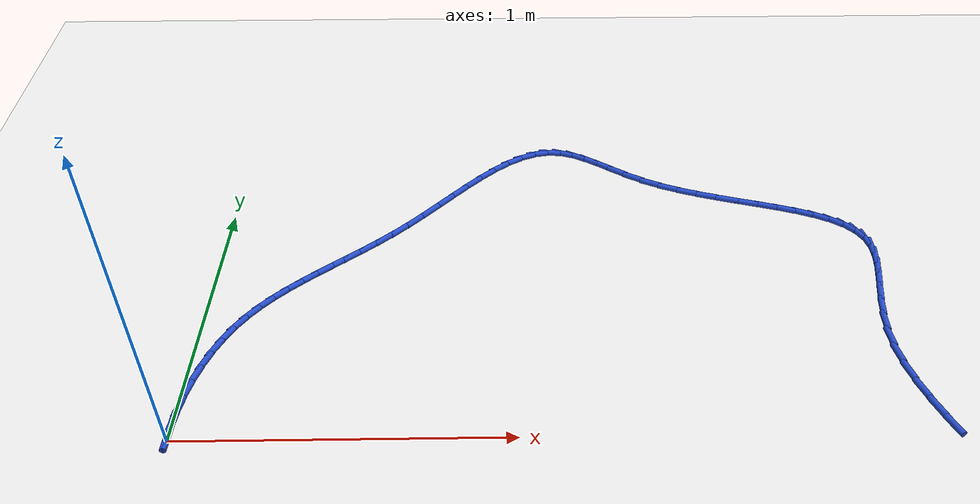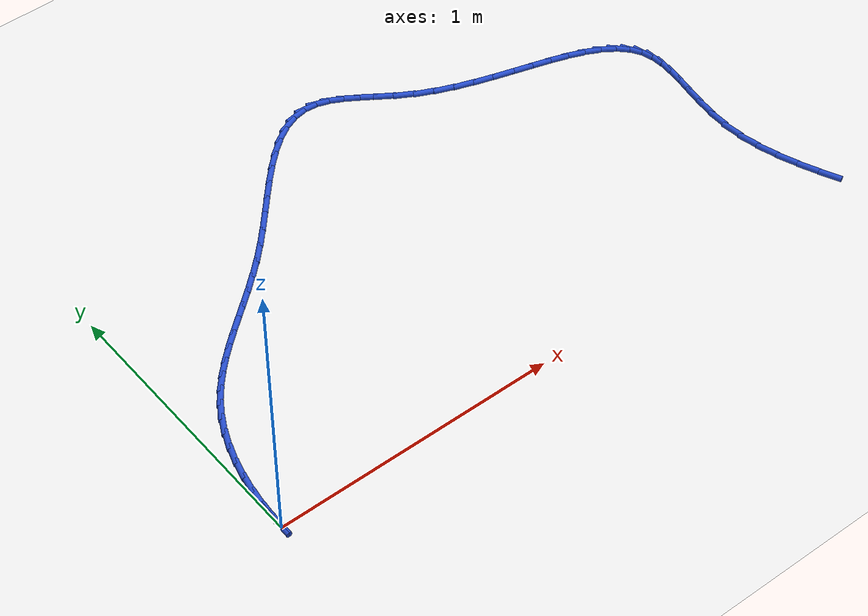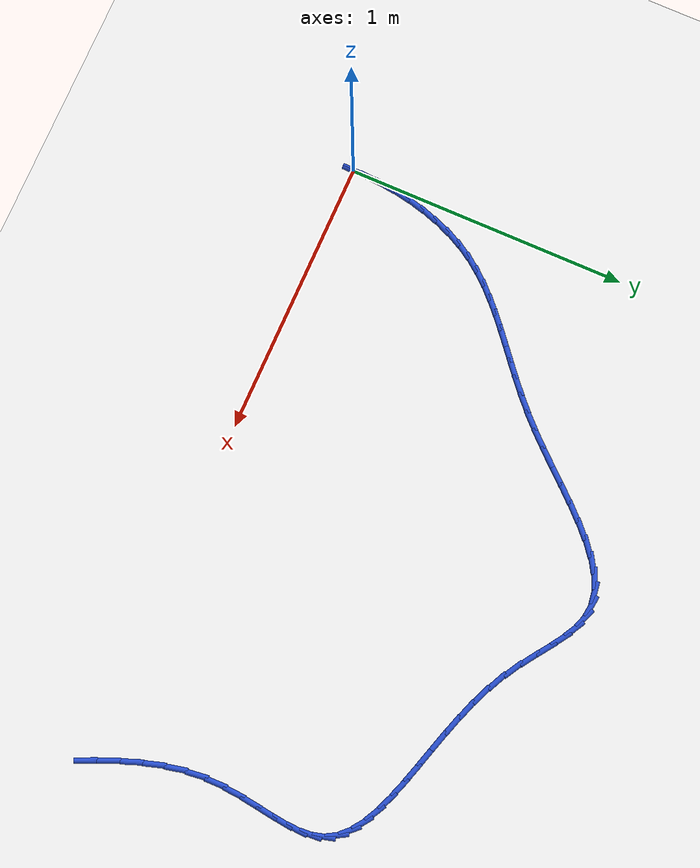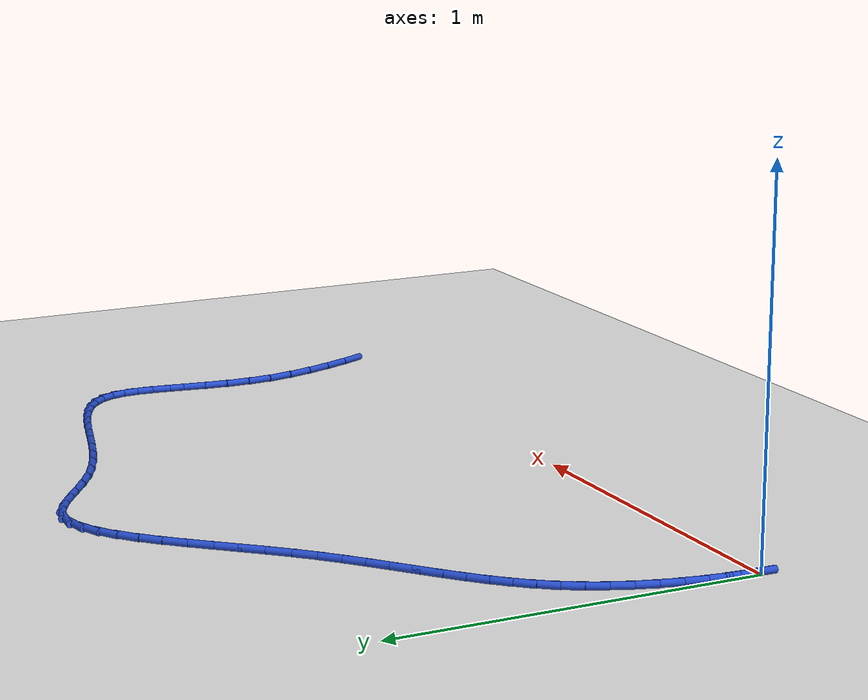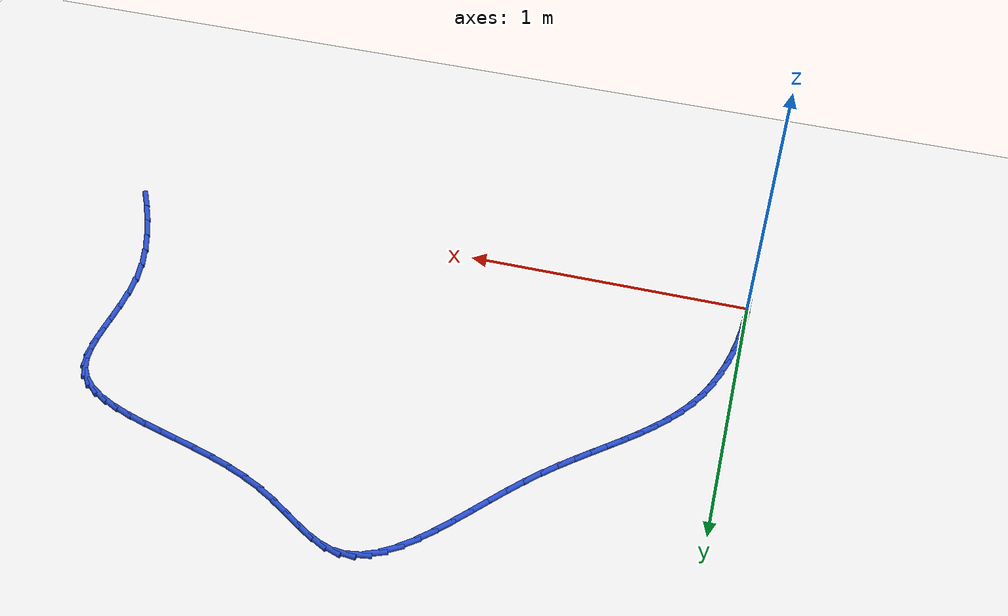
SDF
<sdf version="1.6">
 <world name="default">
  <model name="ground_plane">
   <static>1</static>
   <link name="link">
    <collision name="collision">
     <geometry><plane><normal>0 0 1</normal><size>100 100</size></plane></geometry>
     <surface><friction><ode><mu>100</mu><mu2>50</mu2></ode></friction></surface>
    </collision>
    <visual name="visual">
     <cast_shadows>0</cast_shadows>
     <geometry><plane><normal>0 0 1</normal><size>100 100</size></plane></geometry>
     <material>
      <script><uri>file://media/materials/scripts/gazebo.material</uri><name>Gazebo/WhiteGlow</name></script>
     </material>
    </visual>
   </link>
  </model>
  <model name="line">
   <link name="link_0">
    <pose>-3.469446951953614e-18 1.5265566588595902e-16 0.01 0 1.57 1.5455777123674146</pose>
    <collision name="collision">
     <geometry><cylinder><radius>0.01</radius><length>0.08</length></cylinder></geometry>
    </collision>
    <visual name="visual">
     <material>
      <script><name>Gazebo/Blue</name><uri>file://media/materials/scripts/gazebo.material</uri></script>
     </material>
     <geometry><cylinder><radius>0.01</radius><length>0.08</length></cylinder></geometry>
    </visual>
   </link>
   <link name="link_1">
    <pose>0.0015492278948256656 0.06141889595624291 0.01 0 1.57 1.489265548241584</pose>
    <collision name="collision">
     <geometry><cylinder><radius>0.01</radius><length>0.08</length></cylinder></geometry>
    </collision>
    <visual name="visual">
     <material>
      <script><name>Gazebo/Blue</name><uri>file://media/materials/scripts/gazebo.material</uri></script>
     </material>
     <geometry><cylinder><radius>0.01</radius><length>0.08</length></cylinder></geometry>
    </visual>
   </link>
   <link name="link_2">
    <pose>0.006568018952191827 0.1228394514682261 0.01 0 1.57 1.4313756755678029</pose>
    <collision name="collision">
     <geometry><cylinder><radius>0.01</radius><length>0.08</length></cylinder></geometry>
    </collision>
    <visual name="visual">
     <material>
      <script><name>Gazebo/Blue</name><uri>file://media/materials/scripts/gazebo.material</uri></script>
     </material>
     <geometry><cylinder><radius>0.01</radius><length>0.08</length></cylinder></geometry>
    </visual>
   </link>
   <link name="link_3">
    <pose>0.01511297570514408 0.18373085341352607 0.01 0 1.57 1.3708076831197225</pose>
    <collision name="collision">
     <geometry><cylinder><radius>0.01</radius><length>0.08</length></cylinder></geometry>
    </collision>
    <visual name="visual">
     <material>
      <script><name>Gazebo/Blue</name><uri>file://media/materials/scripts/gazebo.material</uri></script>
     </material>
     <geometry><cylinder><radius>0.01</radius><length>0.08</length></cylinder></geometry>
    </visual>
   </link>
   <link name="link_4">
    <pose>0.02724070068672802 0.24356228866971938 0.01 0 1.57 1.3064105680317664</pose>
    <collision name="collision">
     <geometry><cylinder><radius>0.01</radius><length>0.08</length></cylinder></geometry>
    </collision>
    <visual name="visual">
     <material>
      <script><name>Gazebo/Blue</name><uri>file://media/materials/scripts/gazebo.material</uri></script>
     </material>
     <geometry><cylinder><radius>0.01</radius><length>0.08</length></cylinder></geometry>
    </visual>
   </link>
   <link name="link_5">
    <pose>0.043007796429989247 0.30180294411438247 0.01 0 1.57 1.2369595677178866</pose>
    <collision name="collision">
     <geometry><cylinder><radius>0.01</radius><length>0.08</length></cylinder></geometry>
    </collision>
    <visual name="visual">
     <material>
      <script><name>Gazebo/Blue</name><uri>file://media/materials/scripts/gazebo.material</uri></script>
     </material>
     <geometry><cylinder><radius>0.01</radius><length>0.08</length></cylinder></geometry>
    </visual>
   </link>
   <link name="link_6">
    <pose>0.06247086546797337 0.35792200662509177 0.01 0 1.57 1.1611524239914683</pose>
    <collision name="collision">
     <geometry><cylinder><radius>0.01</radius><length>0.08</length></cylinder></geometry>
    </collision>
    <visual name="visual">
     <material>
      <script><name>Gazebo/Blue</name><uri>file://media/materials/scripts/gazebo.material</uri></script>
     </material>
     <geometry><cylinder><radius>0.01</radius><length>0.08</length></cylinder></geometry>
    </visual>
   </link>
   <link name="link_7">
    <pose>0.08568651033372596 0.41138866307942357 0.01 0 1.57 1.0776396197006104</pose>
    <collision name="collision">
     <geometry><cylinder><radius>0.01</radius><length>0.08</length></cylinder></geometry>
    </collision>
    <visual name="visual">
     <material>
      <script><name>Gazebo/Blue</name><uri>file://media/materials/scripts/gazebo.material</uri></script>
     </material>
     <geometry><cylinder><radius>0.01</radius><length>0.08</length></cylinder></geometry>
    </visual>
   </link>
   <link name="link_8">
    <pose>0.11271133356029266 0.4616721003549548 0.01 0 1.57 0.9876537096827287</pose>
    <collision name="collision">
     <geometry><cylinder><radius>0.01</radius><length>0.08</length></cylinder></geometry>
    </collision>
    <visual name="visual">
     <material>
      <script><name>Gazebo/Blue</name><uri>file://media/materials/scripts/gazebo.material</uri></script>
     </material>
     <geometry><cylinder><radius>0.01</radius><length>0.08</length></cylinder></geometry>
    </visual>
   </link>
   <link name="link_9">
    <pose>0.14354032786466864 0.5084061141774943 0.01 0 1.57 0.9039495423216575</pose>
    <collision name="collision">
     <geometry><cylinder><radius>0.01</radius><length>0.08</length></cylinder></geometry>
    </collision>
    <visual name="visual">
     <material>
      <script><name>Gazebo/Blue</name><uri>file://media/materials/scripts/gazebo.material</uri></script>
     </material>
     <geometry><cylinder><radius>0.01</radius><length>0.08</length></cylinder></geometry>
    </visual>
   </link>
   <link name="link_10">
    <pose>0.17787061044433802 0.5520203628370781 0.01 0 1.57 0.8327598423429833</pose>
    <collision name="collision">
     <geometry><cylinder><radius>0.01</radius><length>0.08</length></cylinder></geometry>
    </collision>
    <visual name="visual">
     <material>
      <script><name>Gazebo/Blue</name><uri>file://media/materials/scripts/gazebo.material</uri></script>
     </material>
     <geometry><cylinder><radius>0.01</radius><length>0.08</length></cylinder></geometry>
    </visual>
   </link>
   <link name="link_11">
    <pose>0.2153093946516234 0.593184709340335 0.01 0 1.57 0.7757161151885211</pose>
    <collision name="collision">
     <geometry><cylinder><radius>0.01</radius><length>0.08</length></cylinder></geometry>
    </collision>
    <visual name="visual">
     <material>
      <script><name>Gazebo/Blue</name><uri>file://media/materials/scripts/gazebo.material</uri></script>
     </material>
     <geometry><cylinder><radius>0.01</radius><length>0.08</length></cylinder></geometry>
    </visual>
   </link>
   <link name="link_12">
    <pose>0.25546387507254137 0.6325690668336325 0.01 0 1.57 0.7333955109666165</pose>
    <collision name="collision">
     <geometry><cylinder><radius>0.01</radius><length>0.08</length></cylinder></geometry>
    </collision>
    <visual name="visual">
     <material>
      <script><name>Gazebo/Blue</name><uri>file://media/materials/scripts/gazebo.material</uri></script>
     </material>
     <geometry><cylinder><radius>0.01</radius><length>0.08</length></cylinder></geometry>
    </visual>
   </link>
   <link name="link_13">
    <pose>0.2979412462931082 0.6708433484633375 0.01 0 1.57 0.7056405291745184</pose>
    <collision name="collision">
     <geometry><cylinder><radius>0.01</radius><length>0.08</length></cylinder></geometry>
    </collision>
    <visual name="visual">
     <material>
      <script><name>Gazebo/Blue</name><uri>file://media/materials/scripts/gazebo.material</uri></script>
     </material>
     <geometry><cylinder><radius>0.01</radius><length>0.08</length></cylinder></geometry>
    </visual>
   </link>
   <link name="link_14">
    <pose>0.3423487028993404 0.7086774673758167 0.01 0 1.57 0.6918616703290194</pose>
    <collision name="collision">
     <geometry><cylinder><radius>0.01</radius><length>0.08</length></cylinder></geometry>
    </collision>
    <visual name="visual">
     <material>
      <script><name>Gazebo/Blue</name><uri>file://media/materials/scripts/gazebo.material</uri></script>
     </material>
     <geometry><cylinder><radius>0.01</radius><length>0.08</length></cylinder></geometry>
    </visual>
   </link>
   <link name="link_15">
    <pose>0.38829343947725437 0.7467413367174377 0.01 0 1.57 0.6912506021605909</pose>
    <collision name="collision">
     <geometry><cylinder><radius>0.01</radius><length>0.08</length></cylinder></geometry>
    </collision>
    <visual name="visual">
     <material>
      <script><name>Gazebo/Blue</name><uri>file://media/materials/scripts/gazebo.material</uri></script>
     </material>
     <geometry><cylinder><radius>0.01</radius><length>0.08</length></cylinder></geometry>
    </visual>
   </link>
   <link name="link_16">
    <pose>0.4353826506128667 0.7857048696345676 0.01 0 1.57 0.7028944525014048</pose>
    <collision name="collision">
     <geometry><cylinder><radius>0.01</radius><length>0.08</length></cylinder></geometry>
    </collision>
    <visual name="visual">
     <material>
      <script><name>Gazebo/Blue</name><uri>file://media/materials/scripts/gazebo.material</uri></script>
     </material>
     <geometry><cylinder><radius>0.01</radius><length>0.08</length></cylinder></geometry>
    </visual>
   </link>
   <link name="link_17">
    <pose>0.4832235308921935 0.826237979273573 0.01 0 1.57 0.7258117037948564</pose>
    <collision name="collision">
     <geometry><cylinder><radius>0.01</radius><length>0.08</length></cylinder></geometry>
    </collision>
    <visual name="visual">
     <material>
      <script><name>Gazebo/Blue</name><uri>file://media/materials/scripts/gazebo.material</uri></script>
     </material>
     <geometry><cylinder><radius>0.01</radius><length>0.08</length></cylinder></geometry>
    </visual>
   </link>
   <link name="link_18">
    <pose>0.5314232749012516 0.8690105787808217 0.01 0 1.57 0.7589380867409496</pose>
    <collision name="collision">
     <geometry><cylinder><radius>0.01</radius><length>0.08</length></cylinder></geometry>
    </collision>
    <visual name="visual">
     <material>
      <script><name>Gazebo/Blue</name><uri>file://media/materials/scripts/gazebo.material</uri></script>
     </material>
     <geometry><cylinder><radius>0.01</radius><length>0.08</length></cylinder></geometry>
    </visual>
   </link>
   <link name="link_19">
    <pose>0.5795890772260572 0.9146925813026803 0.01 0 1.57 0.7992259116090461</pose>
    <collision name="collision">
     <geometry><cylinder><radius>0.01</radius><length>0.08</length></cylinder></geometry>
    </collision>
    <visual name="visual">
     <material>
      <script><name>Gazebo/Blue</name><uri>file://media/materials/scripts/gazebo.material</uri></script>
     </material>
     <geometry><cylinder><radius>0.01</radius><length>0.08</length></cylinder></geometry>
    </visual>
   </link>
   <link name="link_20">
    <pose>0.6273605391922121 0.9638037979457857 0.01 0 1.57 0.8300966499937642</pose>
    <collision name="collision">
     <geometry><cylinder><radius>0.01</radius><length>0.08</length></cylinder></geometry>
    </collision>
    <visual name="visual">
     <material>
      <script><name>Gazebo/Blue</name><uri>file://media/materials/scripts/gazebo.material</uri></script>
     </material>
     <geometry><cylinder><radius>0.01</radius><length>0.08</length></cylinder></geometry>
    </visual>
   </link>
   <link name="link_21">
    <pose>0.6746638121940518 1.0155367927579233 0.01 0 1.57 0.8449106132169049</pose>
    <collision name="collision">
     <geometry><cylinder><radius>0.01</radius><length>0.08</length></cylinder></geometry>
    </collision>
    <visual name="visual">
     <material>
      <script><name>Gazebo/Blue</name><uri>file://media/materials/scripts/gazebo.material</uri></script>
     </material>
     <geometry><cylinder><radius>0.01</radius><length>0.08</length></cylinder></geometry>
    </visual>
   </link>
   <link name="link_22">
    <pose>0.7215745161557426 1.0683918191289679 0.01 0 1.57 0.8446452347881265</pose>
    <collision name="collision">
     <geometry><cylinder><radius>0.01</radius><length>0.08</length></cylinder></geometry>
    </collision>
    <visual name="visual">
     <material>
      <script><name>Gazebo/Blue</name><uri>file://media/materials/scripts/gazebo.material</uri></script>
     </material>
     <geometry><cylinder><radius>0.01</radius><length>0.08</length></cylinder></geometry>
    </visual>
   </link>
   <link name="link_23">
    <pose>0.7681695649172501 1.1208631372694997 0.01 0 1.57 0.8289608703269609</pose>
    <collision name="collision">
     <geometry><cylinder><radius>0.01</radius><length>0.08</length></cylinder></geometry>
    </collision>
    <visual name="visual">
     <material>
      <script><name>Gazebo/Blue</name><uri>file://media/materials/scripts/gazebo.material</uri></script>
     </material>
     <geometry><cylinder><radius>0.01</radius><length>0.08</length></cylinder></geometry>
    </visual>
   </link>
   <link name="link_24">
    <pose>0.8145258723185396 1.1714450073900982 0.01 0 1.57 0.7960230589393831</pose>
    <collision name="collision">
     <geometry><cylinder><radius>0.01</radius><length>0.08</length></cylinder></geometry>
    </collision>
    <visual name="visual">
     <material>
      <script><name>Gazebo/Blue</name><uri>file://media/materials/scripts/gazebo.material</uri></script>
     </material>
     <geometry><cylinder><radius>0.01</radius><length>0.08</length></cylinder></geometry>
    </visual>
   </link>
   <link name="link_25">
    <pose>0.8607203521995768 1.2186316897013438 0.01 0 1.57 0.7421670397752598</pose>
    <collision name="collision">
     <geometry><cylinder><radius>0.01</radius><length>0.08</length></cylinder></geometry>
    </collision>
    <visual name="visual">
     <material>
      <script><name>Gazebo/Blue</name><uri>file://media/materials/scripts/gazebo.material</uri></script>
     </material>
     <geometry><cylinder><radius>0.01</radius><length>0.08</length></cylinder></geometry>
    </visual>
   </link>
   <link name="link_26">
    <pose>0.9068299184003272 1.2609174444138165 0.01 0 1.57 0.6613446718163114</pose>
    <collision name="collision">
     <geometry><cylinder><radius>0.01</radius><length>0.08</length></cylinder></geometry>
    </collision>
    <visual name="visual">
     <material>
      <script><name>Gazebo/Blue</name><uri>file://media/materials/scripts/gazebo.material</uri></script>
     </material>
     <geometry><cylinder><radius>0.01</radius><length>0.08</length></cylinder></geometry>
    </visual>
   </link>
   <link name="link_27">
    <pose>0.9529314847607563 1.2967965317380956 0.01 0 1.57 0.544619473654966</pose>
    <collision name="collision">
     <geometry><cylinder><radius>0.01</radius><length>0.08</length></cylinder></geometry>
    </collision>
    <visual name="visual">
     <material>
      <script><name>Gazebo/Blue</name><uri>file://media/materials/scripts/gazebo.material</uri></script>
     </material>
     <geometry><cylinder><radius>0.01</radius><length>0.08</length></cylinder></geometry>
    </visual>
   </link>
   <link name="link_28">
    <pose>0.9991019651208297 1.324763211884762 0.01 0 1.57 0.38091597240440056</pose>
    <collision name="collision">
     <geometry><cylinder><radius>0.01</radius><length>0.08</length></cylinder></geometry>
    </collision>
    <visual name="visual">
     <material>
      <script><name>Gazebo/Blue</name><uri>file://media/materials/scripts/gazebo.material</uri></script>
     </material>
     <geometry><cylinder><radius>0.01</radius><length>0.08</length></cylinder></geometry>
    </visual>
   </link>
   <link name="link_29">
    <pose>1.0454182733205126 1.343311745064395 0.01 0 1.57 0.16239063432081197</pose>
    <collision name="collision">
     <geometry><cylinder><radius>0.01</radius><length>0.08</length></cylinder></geometry>
    </collision>
    <visual name="visual">
     <material>
      <script><name>Gazebo/Blue</name><uri>file://media/materials/scripts/gazebo.material</uri></script>
     </material>
     <geometry><cylinder><radius>0.01</radius><length>0.08</length></cylinder></geometry>
    </visual>
   </link>
   <link name="link_30">
    <pose>1.0919573231997712 1.350936391487575 0.01 0 1.57 -0.10184713113395591</pose>
    <collision name="collision">
     <geometry><cylinder><radius>0.01</radius><length>0.08</length></cylinder></geometry>
    </collision>
    <visual name="visual">
     <material>
      <script><name>Gazebo/Blue</name><uri>file://media/materials/scripts/gazebo.material</uri></script>
     </material>
     <geometry><cylinder><radius>0.01</radius><length>0.08</length></cylinder></geometry>
    </visual>
   </link>
   <link name="link_31">
    <pose>1.1387981464816237 1.3461492243890587 0.01 0 1.57 -0.3466372470181862</pose>
    <collision name="collision">
     <geometry><cylinder><radius>0.01</radius><length>0.08</length></cylinder></geometry>
    </collision>
    <visual name="visual">
     <material>
      <script><name>Gazebo/Blue</name><uri>file://media/materials/scripts/gazebo.material</uri></script>
     </material>
     <geometry><cylinder><radius>0.01</radius><length>0.08</length></cylinder></geometry>
    </visual>
   </link>
   <link name="link_32">
    <pose>1.1862055252981858 1.3290246207027334 0.01 0 1.57 -0.5015408040947293</pose>
    <collision name="collision">
     <geometry><cylinder><radius>0.01</radius><length>0.08</length></cylinder></geometry>
    </collision>
    <visual name="visual">
     <material>
      <script><name>Gazebo/Blue</name><uri>file://media/materials/scripts/gazebo.material</uri></script>
     </material>
     <geometry><cylinder><radius>0.01</radius><length>0.08</length></cylinder></geometry>
    </visual>
   </link>
   <link name="link_33">
    <pose>1.234772193350964 1.302395282108491 0.01 0 1.57 -0.580426427691028</pose>
    <collision name="collision">
     <geometry><cylinder><radius>0.01</radius><length>0.08</length></cylinder></geometry>
    </collision>
    <visual name="visual">
     <material>
      <script><name>Gazebo/Blue</name><uri>file://media/materials/scripts/gazebo.material</uri></script>
     </material>
     <geometry><cylinder><radius>0.01</radius><length>0.08</length></cylinder></geometry>
    </visual>
   </link>
   <link name="link_34">
    <pose>1.2851243564904993 1.2693754367846515 0.01 0 1.57 -0.602557135249098</pose>
    <collision name="collision">
     <geometry><cylinder><radius>0.01</radius><length>0.08</length></cylinder></geometry>
    </collision>
    <visual name="visual">
     <material>
      <script><name>Gazebo/Blue</name><uri>file://media/materials/scripts/gazebo.material</uri></script>
     </material>
     <geometry><cylinder><radius>0.01</radius><length>0.08</length></cylinder></geometry>
    </visual>
   </link>
   <link name="link_35">
    <pose>1.337888220567333 1.233079312909536 0.01 0 1.57 -0.578727721463713</pose>
    <collision name="collision">
     <geometry><cylinder><radius>0.01</radius><length>0.08</length></cylinder></geometry>
    </collision>
    <visual name="visual">
     <material>
      <script><name>Gazebo/Blue</name><uri>file://media/materials/scripts/gazebo.material</uri></script>
     </material>
     <geometry><cylinder><radius>0.01</radius><length>0.08</length></cylinder></geometry>
    </visual>
   </link>
   <link name="link_36">
    <pose>1.3936899914320047 1.1966211386614658 0.01 0 1.57 -0.5137374770169514</pose>
    <collision name="collision">
     <geometry><cylinder><radius>0.01</radius><length>0.08</length></cylinder></geometry>
    </collision>
    <visual name="visual">
     <material>
      <script><name>Gazebo/Blue</name><uri>file://media/materials/scripts/gazebo.material</uri></script>
     </material>
     <geometry><cylinder><radius>0.01</radius><length>0.08</length></cylinder></geometry>
    </visual>
   </link>
   <link name="link_37">
    <pose>1.4531386379678657 1.1630757010090693 0.01 0 1.57 -0.4335015345853649</pose>
    <collision name="collision">
     <geometry><cylinder><radius>0.01</radius><length>0.08</length></cylinder></geometry>
    </collision>
    <visual name="visual">
     <material>
      <script><name>Gazebo/Blue</name><uri>file://media/materials/scripts/gazebo.material</uri></script>
     </material>
     <geometry><cylinder><radius>0.01</radius><length>0.08</length></cylinder></geometry>
    </visual>
   </link>
   <link name="link_38">
    <pose>1.5161420413956692 1.1339135751587122 0.01 0 1.57 -0.3701961304441855</pose>
    <collision name="collision">
     <geometry><cylinder><radius>0.01</radius><length>0.08</length></cylinder></geometry>
    </collision>
    <visual name="visual">
     <material>
      <script><name>Gazebo/Blue</name><uri>file://media/materials/scripts/gazebo.material</uri></script>
     </material>
     <geometry><cylinder><radius>0.01</radius><length>0.08</length></cylinder></geometry>
    </visual>
   </link>
   <link name="link_39">
    <pose>1.5816789937478468 1.108479417000807 0.01 0 1.57 -0.32416003328664866</pose>
    <collision name="collision">
     <geometry><cylinder><radius>0.01</radius><length>0.08</length></cylinder></geometry>
    </collision>
    <visual name="visual">
     <material>
      <script><name>Gazebo/Blue</name><uri>file://media/materials/scripts/gazebo.material</uri></script>
     </material>
     <geometry><cylinder><radius>0.01</radius><length>0.08</length></cylinder></geometry>
    </visual>
   </link>
   <link name="link_40">
    <pose>1.6486643134561128 1.0859714995863272 0.01 0 1.57 -0.29389135794392</pose>
    <collision name="collision">
     <geometry><cylinder><radius>0.01</radius><length>0.08</length></cylinder></geometry>
    </collision>
    <visual name="visual">
     <material>
      <script><name>Gazebo/Blue</name><uri>file://media/materials/scripts/gazebo.material</uri></script>
     </material>
     <geometry><cylinder><radius>0.01</radius><length>0.08</length></cylinder></geometry>
    </visual>
   </link>
   <link name="link_41">
    <pose>1.7160128189521815 1.0655880959662445 0.01 0 1.57 -0.2786391945370517</pose>
    <collision name="collision">
     <geometry><cylinder><radius>0.01</radius><length>0.08</length></cylinder></geometry>
    </collision>
    <visual name="visual">
     <material>
      <script><name>Gazebo/Blue</name><uri>file://media/materials/scripts/gazebo.material</uri></script>
     </material>
     <geometry><cylinder><radius>0.01</radius><length>0.08</length></cylinder></geometry>
    </visual>
   </link>
   <link name="link_42">
    <pose>1.7826393286677673 1.0465274791915318 0.01 0 1.57 -0.27858129988596575</pose>
    <collision name="collision">
     <geometry><cylinder><radius>0.01</radius><length>0.08</length></cylinder></geometry>
    </collision>
    <visual name="visual">
     <material>
      <script><name>Gazebo/Blue</name><uri>file://media/materials/scripts/gazebo.material</uri></script>
     </material>
     <geometry><cylinder><radius>0.01</radius><length>0.08</length></cylinder></geometry>
    </visual>
   </link>
   <link name="link_43">
    <pose>1.847458661034584 1.0279879223131607 0.01 0 1.57 -0.2950400409556875</pose>
    <collision name="collision">
     <geometry><cylinder><radius>0.01</radius><length>0.08</length></cylinder></geometry>
    </collision>
    <visual name="visual">
     <material>
      <script><name>Gazebo/Blue</name><uri>file://media/materials/scripts/gazebo.material</uri></script>
     </material>
     <geometry><cylinder><radius>0.01</radius><length>0.08</length></cylinder></geometry>
    </visual>
   </link>
   <link name="link_44">
    <pose>1.9093856344843454 1.009167698382105 0.01 0 1.57 -0.33082598271419167</pose>
    <collision name="collision">
     <geometry><cylinder><radius>0.01</radius><length>0.08</length></cylinder></geometry>
    </collision>
    <visual name="visual">
     <material>
      <script><name>Gazebo/Blue</name><uri>file://media/materials/scripts/gazebo.material</uri></script>
     </material>
     <geometry><cylinder><radius>0.01</radius><length>0.08</length></cylinder></geometry>
    </visual>
   </link>
   <link name="link_45">
    <pose>1.967335067448766 0.9892650804493365 0.01 0 1.57 -0.39076640812288743</pose>
    <collision name="collision">
     <geometry><cylinder><radius>0.01</radius><length>0.08</length></cylinder></geometry>
    </collision>
    <visual name="visual">
     <material>
      <script><name>Gazebo/Blue</name><uri>file://media/materials/scripts/gazebo.material</uri></script>
     </material>
     <geometry><cylinder><radius>0.01</radius><length>0.08</length></cylinder></geometry>
    </visual>
   </link>
   <link name="link_46">
    <pose>2.0202217783595597 0.9674783415658273 0.01 0 1.57 -0.4823513412720288</pose>
    <collision name="collision">
     <geometry><cylinder><radius>0.01</radius><length>0.08</length></cylinder></geometry>
    </collision>
    <visual name="visual">
     <material>
      <script><name>Gazebo/Blue</name><uri>file://media/materials/scripts/gazebo.material</uri></script>
     </material>
     <geometry><cylinder><radius>0.01</radius><length>0.08</length></cylinder></geometry>
    </visual>
   </link>
   <link name="link_47">
    <pose>2.0669605856484408 0.9430057547825507 0.01 0 1.57 -0.6159081688675554</pose>
    <collision name="collision">
     <geometry><cylinder><radius>0.01</radius><length>0.08</length></cylinder></geometry>
    </collision>
    <visual name="visual">
     <material>
      <script><name>Gazebo/Blue</name><uri>file://media/materials/scripts/gazebo.material</uri></script>
     </material>
     <geometry><cylinder><radius>0.01</radius><length>0.08</length></cylinder></geometry>
    </visual>
   </link>
   <link name="link_48">
    <pose>2.106466307747122 0.9150455931504784 0.01 0 1.57 -0.8021377672716757</pose>
    <collision name="collision">
     <geometry><cylinder><radius>0.01</radius><length>0.08</length></cylinder></geometry>
    </collision>
    <visual name="visual">
     <material>
      <script><name>Gazebo/Blue</name><uri>file://media/materials/scripts/gazebo.material</uri></script>
     </material>
     <geometry><cylinder><radius>0.01</radius><length>0.08</length></cylinder></geometry>
    </visual>
   </link>
   <link name="link_49">
    <pose>2.13765376308732 0.8827961297205835 0.01 0 1.57 -1.04268085274019</pose>
    <collision name="collision">
     <geometry><cylinder><radius>0.01</radius><length>0.08</length></cylinder></geometry>
    </collision>
    <visual name="visual">
     <material>
      <script><name>Gazebo/Blue</name><uri>file://media/materials/scripts/gazebo.material</uri></script>
     </material>
     <geometry><cylinder><radius>0.01</radius><length>0.08</length></cylinder></geometry>
    </visual>
   </link>
   <link name="link_50">
    <pose>2.159437770100746 0.8454556375438381 0.01 0 1.57 -1.3086881468641793</pose>
    <collision name="collision">
     <geometry><cylinder><radius>0.01</radius><length>0.08</length></cylinder></geometry>
    </collision>
    <visual name="visual">
     <material>
      <script><name>Gazebo/Blue</name><uri>file://media/materials/scripts/gazebo.material</uri></script>
     </material>
     <geometry><cylinder><radius>0.01</radius><length>0.08</length></cylinder></geometry>
    </visual>
   </link>
   <link name="link_51">
    <pose>2.1710069861569794 0.802332004781392 0.01 0 1.57 -1.5148206457199196</pose>
    <collision name="collision">
     <geometry><cylinder><radius>0.01</radius><length>0.08</length></cylinder></geometry>
    </collision>
    <visual name="visual">
     <material>
      <script><name>Gazebo/Blue</name><uri>file://media/materials/scripts/gazebo.material</uri></script>
     </material>
     <geometry><cylinder><radius>0.01</radius><length>0.08</length></cylinder></geometry>
    </visual>
   </link>
   <link name="link_52">
    <pose>2.1737371643727297 0.7536085931233251 0.01 0 1.57 1.502305638506804</pose>
    <collision name="collision">
     <geometry><cylinder><radius>0.01</radius><length>0.08</length></cylinder></geometry>
    </collision>
    <visual name="visual">
     <material>
      <script><name>Gazebo/Blue</name><uri>file://media/materials/scripts/gazebo.material</uri></script>
     </material>
     <geometry><cylinder><radius>0.01</radius><length>0.08</length></cylinder></geometry>
    </visual>
   </link>
   <link name="link_53">
    <pose>2.1700520583383343 0.6998882688352116 0.01 0 1.57 1.4395668056487159</pose>
    <collision name="collision">
     <geometry><cylinder><radius>0.01</radius><length>0.08</length></cylinder></geometry>
    </collision>
    <visual name="visual">
     <material>
      <script><name>Gazebo/Blue</name><uri>file://media/materials/scripts/gazebo.material</uri></script>
     </material>
     <geometry><cylinder><radius>0.01</radius><length>0.08</length></cylinder></geometry>
    </visual>
   </link>
   <link name="link_54">
    <pose>2.162382003253802 0.6417765327380873 0.01 0 1.57 1.4228541799606012</pose>
    <collision name="collision">
     <geometry><cylinder><radius>0.01</radius><length>0.08</length></cylinder></geometry>
    </collision>
    <visual name="visual">
     <material>
      <script><name>Gazebo/Blue</name><uri>file://media/materials/scripts/gazebo.material</uri></script>
     </material>
     <geometry><cylinder><radius>0.01</radius><length>0.08</length></cylinder></geometry>
    </visual>
   </link>
   <link name="link_55">
    <pose>2.153157334319143 0.5798788856529885 0.01 0 1.57 1.4432020060087096</pose>
    <collision name="collision">
     <geometry><cylinder><radius>0.01</radius><length>0.08</length></cylinder></geometry>
    </collision>
    <visual name="visual">
     <material>
      <script><name>Gazebo/Blue</name><uri>file://media/materials/scripts/gazebo.material</uri></script>
     </material>
     <geometry><cylinder><radius>0.01</radius><length>0.08</length></cylinder></geometry>
    </visual>
   </link>
   <link name="link_56">
    <pose>2.144808386734364 0.5148008284009512 0.01 0 1.57 1.4963933498341018</pose>
    <collision name="collision">
     <geometry><cylinder><radius>0.01</radius><length>0.08</length></cylinder></geometry>
    </collision>
    <visual name="visual">
     <material>
      <script><name>Gazebo/Blue</name><uri>file://media/materials/scripts/gazebo.material</uri></script>
     </material>
     <geometry><cylinder><radius>0.01</radius><length>0.08</length></cylinder></geometry>
    </visual>
   </link>
   <link name="link_57">
    <pose>2.139765495699474 0.4471478618030107 0.01 0 1.57 -1.560835767722745</pose>
    <collision name="collision">
     <geometry><cylinder><radius>0.01</radius><length>0.08</length></cylinder></geometry>
    </collision>
    <visual name="visual">
     <material>
      <script><name>Gazebo/Blue</name><uri>file://media/materials/scripts/gazebo.material</uri></script>
     </material>
     <geometry><cylinder><radius>0.01</radius><length>0.08</length></cylinder></geometry>
    </visual>
   </link>
   <link name="link_58">
    <pose>2.1404589964144813 0.3775254866802021 0.01 0 1.57 -1.4510218776682444</pose>
    <collision name="collision">
     <geometry><cylinder><radius>0.01</radius><length>0.08</length></cylinder></geometry>
    </collision>
    <visual name="visual">
     <material>
      <script><name>Gazebo/Blue</name><uri>file://media/materials/scripts/gazebo.material</uri></script>
     </material>
     <geometry><cylinder><radius>0.01</radius><length>0.08</length></cylinder></geometry>
    </visual>
   </link>
   <link name="link_59">
    <pose>2.149002661792277 0.30653563253284033 0.01 0 1.57 -1.3500547310966646</pose>
    <collision name="collision">
     <geometry><cylinder><radius>0.01</radius><length>0.08</length></cylinder></geometry>
    </collision>
    <visual name="visual">
     <material>
      <script><name>Gazebo/Blue</name><uri>file://media/materials/scripts/gazebo.material</uri></script>
     </material>
     <geometry><cylinder><radius>0.01</radius><length>0.08</length></cylinder></geometry>
    </visual>
   </link>
   <link name="link_60">
    <pose>2.1651105225077383 0.23475315599271104 0.01 0 1.57 -1.2706645618210082</pose>
    <collision name="collision">
     <geometry><cylinder><radius>0.01</radius><length>0.08</length></cylinder></geometry>
    </collision>
    <visual name="visual">
     <material>
      <script><name>Gazebo/Blue</name><uri>file://media/materials/scripts/gazebo.material</uri></script>
     </material>
     <geometry><cylinder><radius>0.01</radius><length>0.08</length></cylinder></geometry>
    </visual>
   </link>
   <link name="link_61">
    <pose>2.1873970418381568 0.16274050884114374 0.01 0 1.57 -1.2096579452636849</pose>
    <collision name="collision">
     <geometry><cylinder><radius>0.01</radius><length>0.08</length></cylinder></geometry>
    </collision>
    <visual name="visual">
     <material>
      <script><name>Gazebo/Blue</name><uri>file://media/materials/scripts/gazebo.material</uri></script>
     </material>
     <geometry><cylinder><radius>0.01</radius><length>0.08</length></cylinder></geometry>
    </visual>
   </link>
   <link name="link_62">
    <pose>2.2144709609225846 0.09106007830474412 0.01 0 1.57 -1.1643149655562752</pose>
    <collision name="collision">
     <geometry><cylinder><radius>0.01</radius><length>0.08</length></cylinder></geometry>
    </collision>
    <visual name="visual">
     <material>
      <script><name>Gazebo/Blue</name><uri>file://media/materials/scripts/gazebo.material</uri></script>
     </material>
     <geometry><cylinder><radius>0.01</radius><length>0.08</length></cylinder></geometry>
    </visual>
   </link>
   <link name="link_63">
    <pose>2.2449410209000726 0.020274251610119275 0.01 0 1.57 -1.132731195583653</pose>
    <collision name="collision">
     <geometry><cylinder><radius>0.01</radius><length>0.08</length></cylinder></geometry>
    </collision>
    <visual name="visual">
     <material>
      <script><name>Gazebo/Blue</name><uri>file://media/materials/scripts/gazebo.material</uri></script>
     </material>
     <geometry><cylinder><radius>0.01</radius><length>0.08</length></cylinder></geometry>
    </visual>
   </link>
   <link name="link_130">
    <pose>-3.469446951953614e-17 3.608224830031759e-16 0.01 0 1.57 1.5458281112988526</pose>
    <collision name="collision">
     <geometry><cylinder><radius>0.01</radius><length>0.08</length></cylinder></geometry>
    </collision>
    <visual name="visual">
     <material>
      <script><name>Gazebo/Blue</name><uri>file://media/materials/scripts/gazebo.material</uri></script>
     </material>
     <geometry><cylinder><radius>0.01</radius><length>0.08</length></cylinder></geometry>
    </visual>
   </link>
   <link name="link_131">
    <pose>0.0015354881915902036 0.06148493463993472 0.01 0 1.57 1.5458281112988532</pose>
    <collision name="collision">
     <geometry><cylinder><radius>0.01</radius><length>0.08</length></cylinder></geometry>
    </collision>
    <visual name="visual">
     <material>
      <script><name>Gazebo/Blue</name><uri>file://media/materials/scripts/gazebo.material</uri></script>
     </material>
     <geometry><cylinder><radius>0.01</radius><length>0.08</length></cylinder></geometry>
    </visual>
   </link>
  </model>
 </world>
</sdf>
